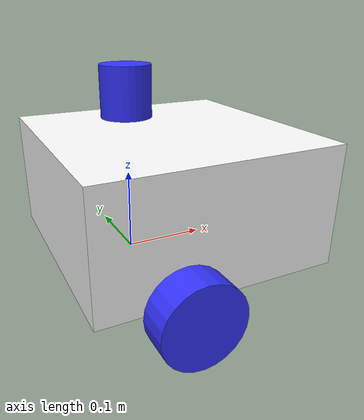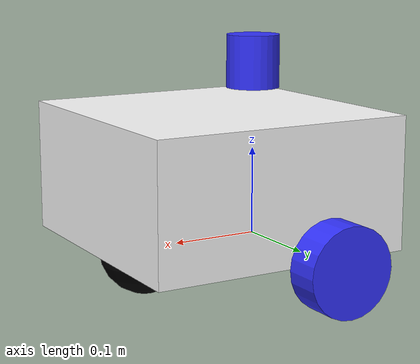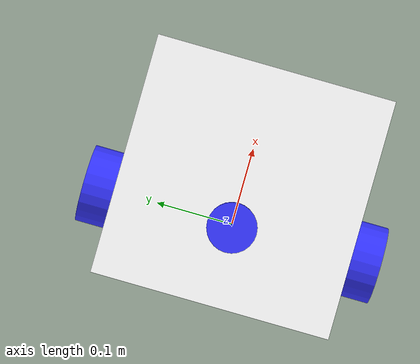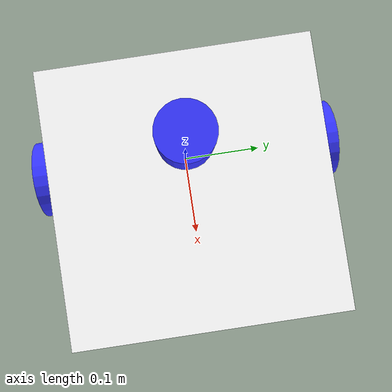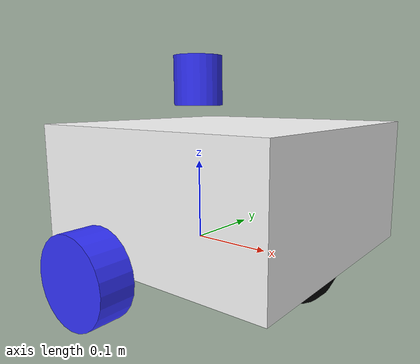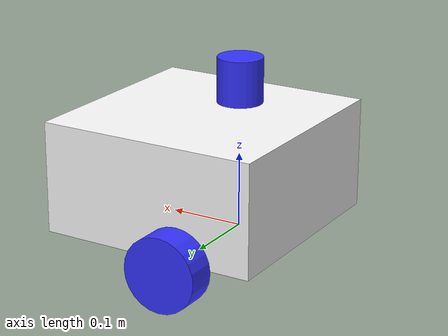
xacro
<?xml version="1.0"?>
<!-- robot_core.xacro -->
<robot xmlns:xacro="http://www.ros.org/wiki/xacro">

    <xacro:include filename="inertial_macros.xacro" />
    <xacro:include filename="lidar.xacro" />

    <xacro:arg name="mesh_enabled" default="false" />
    <xacro:arg name="robot_namespace" default="/" />

    <material name="white">
        <color rgba="1 1 1 1" />
    </material>

    <material name="orange">
        <color rgba="1 0.3 0.1 1" />
    </material>

    <material name="blue">
        <color rgba="0.2 0.2 1 1" />
    </material>

    <material name="black">
        <color rgba="0 0 0 1" />
    </material>

    <!-- BASE LINK -->

    <link name="base_link">

    </link>

    <!-- CHASSIS LINK -->

    <joint name="chassis_joint" type="fixed">
        <parent link="base_link" />
        <child link="chassis" />
        <origin xyz="-0.1 0 0" />
    </joint>

    <link name="chassis">
        <visual>
            <origin xyz="0.15 0 0.075" />
            <geometry>
                <box size="0.3 0.3 0.15" />
            </geometry>
            <material name="white" />
        </visual>
        <collision>
            <origin xyz="0.15 0 0.075" />
            <geometry>
                <box size="0.3 0.3 0.15" />
            </geometry>
        </collision>
        <xacro:inertial_box mass="0.5" x="0.3" y="0.3" z="0.15">
            <origin xyz="0.15 0 0.075" rpy="0 0 0" />
        </xacro:inertial_box>
    </link>

    <!-- LEFT WHEEL LINK -->

    <joint name="left_wheel" type="continuous">
        <parent link="base_link" />
        <child link="left_wheel_link" />
        <origin xyz="0 0.175 0" rpy="-${pi/2} 0 0" />
        <axis xyz="0 0 1" />
        <dynamics damping="0.5" friction="100.0" />
    </joint>

    <link name="left_wheel_link">
        <visual>
            <geometry>
                <cylinder radius="0.05" length="0.04" />
            </geometry>
            <material name="blue" />
        </visual>
        <collision>
            <geometry>
                <cylinder radius="0.05" length="0.04" />
            </geometry>
        </collision>
        <xacro:inertial_cylinder mass="0.1" length="0.04" radius="0.05">
            <origin xyz="0 0 0" rpy="0 0 0" />
        </xacro:inertial_cylinder>
    </link>

    <transmission name="left_wheel_trans" type="SimpleTransmission">
        <type>transmission_interface/SimpleTransmission</type>
        <actuator name="left_wheel_motor">
            <mechanicalReduction>1</mechanicalReduction>
        </actuator>
        <joint name="left_wheel">
            <hardwareInterface>hardware_interface/VelocityJointInterface</hardwareInterface>
        </joint>
    </transmission>

    <!-- RIGHT WHEEL LINK -->

    <joint name="right_wheel" type="continuous">
        <parent link="base_link" />
        <child link="right_wheel_link" />
        <origin xyz="0 -0.175 0" rpy="${pi/2} 0 0" />
        <axis xyz="0 0 -1" />
        <dynamics damping="0.5" friction="100.0" />
    </joint>

    <link name="right_wheel_link">
        <visual>
            <geometry>
                <cylinder radius="0.05" length="0.04" />
            </geometry>
            <material name="blue" />
        </visual>
        <collision>
            <geometry>
                <cylinder radius="0.05" length="0.04" />
            </geometry>
        </collision>
        <xacro:inertial_cylinder mass="0.1" length="0.04" radius="0.05">
            <origin xyz="0 0 0" rpy="0 0 0" />
        </xacro:inertial_cylinder>
    </link>
    <transmission name="right_wheel_trans" type="SimpleTransmission">
        <type>transmission_interface/SimpleTransmission</type>
        <actuator name="right_wheel_motor">
            <mechanicalReduction>1</mechanicalReduction>
        </actuator>
        <joint name="right_wheel">
            <hardwareInterface>hardware_interface/VelocityJointInterface</hardwareInterface>
        </joint>
    </transmission>

    <!--Front
    CASTER WHEEL LINK -->

    <joint name="caster_wheel_joint" type="fixed">
        <parent link="chassis" />
        <child link="caster_wheel" />
        <origin xyz="0.24 0 0" />
        <dynamics damping="0.0" friction="0.0" />
    </joint>

    <gazebo reference="caster_wheel">
        <mu1 value="0.0" />
        <mu2 value="0.0" />
        <kp value="10000000.0" />
        <kd value="1.0" />
        <fdir1 value="1 0 0" />
        <material>Gazebo/Grey</material>
        <turnGravityOff>false</turnGravityOff>
    </gazebo>

    <gazebo reference="left_wheel">
        <mu1 value="100.0" />
        <mu2 value="100.0" />
        <kp value="10000000.0" />
        <kd value="1.0" />
        <fdir1 value="1 0 0" />
        <material>Gazebo/Grey</material>
        <turnGravityOff>false</turnGravityOff>
    </gazebo>

    <gazebo reference="right_wheel">
        <mu1 value="100.0" />
        <mu2 value="100.0" />
        <kp value="10000000.0" />
        <kd value="1.0" />
        <fdir1 value="1 0 0" />
        <material>Gazebo/Grey</material>
        <turnGravityOff>false</turnGravityOff>
    </gazebo>

    <link name="caster_wheel">
        <visual>
            <geometry>
                <sphere radius="0.05" />
            </geometry>
            <material name="black" />
        </visual>
        <collision>
            <geometry>
                <sphere radius="0.05" />
            </geometry>
        </collision>
        <xacro:inertial_sphere mass="0.1" radius="0.05">
            <origin xyz="0 0 0" rpy="0 0 0" />
        </xacro:inertial_sphere>
    </link>

    <!-- Sensors -->
    <xacro:laser parent_link="base_link" />

    <gazebo>
        <plugin name="gazebo_ros_control" filename="libgazebo_ros_control.so">
            <robotNamespace>$(arg robot_namespace)</robotNamespace>
            <legacyModeNS>true</legacyModeNS>
        </plugin>
    </gazebo>

</robot>

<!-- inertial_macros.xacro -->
<robot xmlns:xacro="http://www.ros.org/wiki/xacro" >

    <!-- Specify some standard inertial calculations https://en.wikipedia.org/wiki/List_of_moments_of_inertia -->
    <!-- These make use of xacro's mathematical functionality -->

    <!-- front free wheel -->
    <xacro:macro name="inertial_sphere" params="mass radius *origin">
        <inertial>
            <xacro:insert_block name="origin"/>
            <mass value="${mass}" />
            <inertia ixx="${(2/5) * mass * (radius*radius)}" ixy="0.0" ixz="0.0"
                    iyy="${(2/5) * mass * (radius*radius)}" iyz="0.0"
                    izz="${(2/5) * mass * (radius*radius)}" />
        </inertial>
    </xacro:macro>

    <!-- robot base -->
    <xacro:macro name="inertial_box" params="mass x y z *origin">
        <inertial>
            <xacro:insert_block name="origin"/>
            <mass value="${mass}" />
            <inertia ixx="${(1/12) * mass * (y*y+z*z)}" ixy="0.0" ixz="0.0"
                    iyy="${(1/12) * mass * (x*x+z*z)}" iyz="0.0"
                    izz="${(1/12) * mass * (x*x+y*y)}" />
        </inertial>
    </xacro:macro>

    <!-- wheel -->
    <xacro:macro name="inertial_cylinder" params="mass length radius *origin">
        <inertial>
            <xacro:insert_block name="origin"/>
            <mass value="${mass}" />
            <inertia ixx="${(1/12) * mass * (3*radius*radius + length*length)}" ixy="0.0" ixz="0.0"
                    iyy="${(1/12) * mass * (3*radius*radius + length*length)}" iyz="0.0"
                    izz="${(1/2) * mass * (radius*radius)}" />
        </inertial>
    </xacro:macro>

</robot>

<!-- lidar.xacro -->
<!-- lidar.xacro -->
<robot xmlns:xacro="http://www.ros.org/wiki/xacro">

<xacro:macro name="laser" params="parent_link">

    <!-- Add a Sensor Link -->
    <link name="lidar_link">
        <visual>
            <geometry>
                <cylinder radius="0.03" length="0.06" /> <!-- Example shape, adjust as needed -->
            </geometry>
            <material name="blue" /> <!-- Example material, adjust as needed -->
        </visual>
        <collision>
            <geometry>
                <cylinder radius="0.03" length="0.06" /> <!-- Example shape, adjust as needed -->
            </geometry>
        </collision>
    </link>
    <joint name="lidar_joint" type="fixed">
        <parent link="${parent_link}" />
        <child link="lidar_link" />
        <origin xyz="0.0 0 0.2" rpy="0 0 0" />
    </joint>

    <gazebo reference="lidar_link">
        <material>Gazebo/Red</material>

        <sensor name="lidar" type="ray">
            <pose> 0 0 0 0 0 0 </pose>
            <visualize>true</visualize>
            <update_rate>30</update_rate>
            <ray>
                <scan>
                    <horizontal>
                        <samples>1024</samples>
                        <min_angle>-3.14</min_angle>
                        <max_angle>3.14</max_angle>
                    </horizontal>
                </scan>
                <range>
                    <min>0.1</min>
                    <max>20</max>
                </range>
            </ray>

            <plugin name="lidar_controller" filename="libgazebo_ros_laser.so">
                <topicName>/scan</topicName>
                <frameName>lidar_link</frameName>
            </plugin>

        </sensor>
    </gazebo>
</xacro:macro>
</robot>
